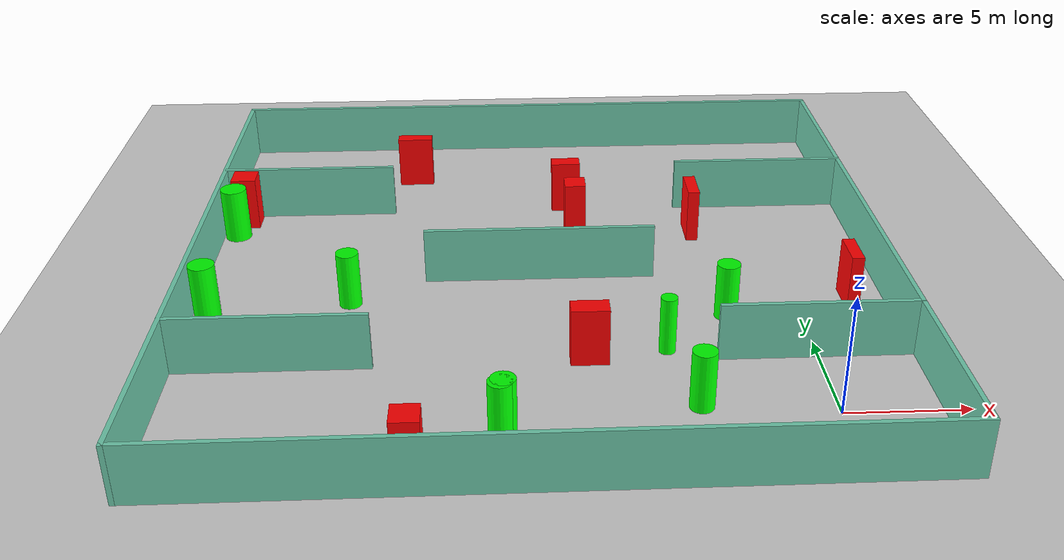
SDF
<sdf version="1.7">
 <world name="default">
  <light name="sun" type="directional">
   <pose>0 0 10 0 -0 0</pose>
   <diffuse>0.8 0.8 0.8 1</diffuse>
   <specular>0.2 0.2 0.2 1</specular>
   <attenuation>
    <range>1000</range>
    <constant>0.9</constant>
    <linear>0.01</linear>
    <quadratic>0.001</quadratic>
   </attenuation>
   <direction>-0.5 0.1 -0.9</direction>
   <spot><inner_angle>0</inner_angle><outer_angle>0</outer_angle><falloff>0</falloff></spot>
  </light>
  <model name="ground_plane">
   <static>1</static>
   <link name="link">
    <collision name="collision">
     <geometry><plane><normal>0 0 1</normal><size>100 100</size></plane></geometry>
     <surface>
      <contact><collide_bitmask>65535</collide_bitmask></contact>
      <friction><ode><mu>100</mu><mu2>50</mu2></ode></friction>
     </surface>
    </collision>
    <visual name="visual">
     <cast_shadows>0</cast_shadows>
     <geometry><plane><normal>0 0 1</normal><size>100 100</size></plane></geometry>
     <material>
      <script><uri>file://media/materials/scripts/gazebo.material</uri><name>Gazebo/Grey</name></script>
     </material>
    </visual>
   </link>
  </model>
  <gravity>0 0 -9.8</gravity>
  <magnetic_field>6e-06 2.3e-05 -4.2e-05</magnetic_field>
  <atmosphere type="adiabatic"/>
  <physics type="ode">
   <max_step_size>0.001</max_step_size>
   <real_time_factor>1</real_time_factor>
   <real_time_update_rate>1000</real_time_update_rate>
  </physics>
  <scene><ambient>0.4 0.4 0.4 1</ambient><background>0.7 0.7 0.7 1</background><shadows>1</shadows></scene>
  <spherical_coordinates>
   <surface_model>EARTH_WGS84</surface_model>
   <latitude_deg>0</latitude_deg>
   <longitude_deg>0</longitude_deg>
   <elevation>0</elevation>
   <heading_deg>0</heading_deg>
  </spherical_coordinates>
  <model name="my_base_walls">
   <link name="Wall_10">
    <collision name="Wall_10_Collision">
     <geometry><box><size>8.2 0.2 2.5</size></box></geometry>
     <pose>0 0 1.25 0 -0 0</pose>
    </collision>
    <visual name="Wall_10_Visual">
     <pose>0 0 1.25 0 -0 0</pose>
     <geometry><box><size>8.2 0.2 2.5</size></box></geometry>
     <material>
      <script><uri>file://media/materials/scripts/gazebo.material</uri><name>Gazebo/Grey</name></script>
      <ambient>0.435294 0.796078 0.67451 1</ambient>
     </material>
     <meta><layer>0</layer></meta>
    </visual>
    <pose>-11 -7 0 0 -0 0</pose>
   </link>
   <link name="Wall_12">
    <collision name="Wall_12_Collision">
     <geometry><box><size>8.2 0.2 2.5</size></box></geometry>
     <pose>0 0 1.25 0 -0 0</pose>
    </collision>
    <visual name="Wall_12_Visual">
     <pose>0 0 1.25 0 -0 0</pose>
     <geometry><box><size>8.2 0.2 2.5</size></box></geometry>
     <material>
      <script><uri>file://media/materials/scripts/gazebo.material</uri><name>Gazebo/Grey</name></script>
      <ambient>0.435294 0.796078 0.67451 1</ambient>
     </material>
     <meta><layer>0</layer></meta>
    </visual>
    <pose>-11 7 0 0 -0 0</pose>
   </link>
   <link name="Wall_14">
    <collision name="Wall_14_Collision">
     <geometry><box><size>8.2 0.2 2.5</size></box></geometry>
     <pose>0 0 1.25 0 -0 0</pose>
    </collision>
    <visual name="Wall_14_Visual">
     <pose>0 0 1.25 0 -0 0</pose>
     <geometry><box><size>8.2 0.2 2.5</size></box></geometry>
     <material>
      <script><uri>file://media/materials/scripts/gazebo.material</uri><name>Gazebo/Grey</name></script>
      <ambient>0.435294 0.796078 0.67451 1</ambient>
     </material>
     <meta><layer>0</layer></meta>
    </visual>
    <pose>11 7 0 0 -0 3.14159</pose>
   </link>
   <link name="Wall_16">
    <collision name="Wall_16_Collision">
     <geometry><box><size>10.2 0.2 2.5</size></box></geometry>
     <pose>0 0 1.25 0 -0 0</pose>
    </collision>
    <visual name="Wall_16_Visual">
     <pose>0 0 1.25 0 -0 0</pose>
     <geometry><box><size>10.2 0.2 2.5</size></box></geometry>
     <material>
      <script><uri>file://media/materials/scripts/gazebo.material</uri><name>Gazebo/Grey</name></script>
      <ambient>0.435294 0.796078 0.67451 1</ambient>
     </material>
     <meta><layer>0</layer></meta>
    </visual>
    <pose>0 0 0 0 -0 3.14159</pose>
   </link>
   <link name="Wall_2">
    <collision name="Wall_2_Collision">
     <geometry><box><size>30.2 0.2 2.5</size></box></geometry>
     <pose>0 0 1.25 0 -0 0</pose>
    </collision>
    <visual name="Wall_2_Visual">
     <pose>0 0 1.25 0 -0 0</pose>
     <geometry><box><size>30.2 0.2 2.5</size></box></geometry>
     <material>
      <script><uri>file://media/materials/scripts/gazebo.material</uri><name>Gazebo/Grey</name></script>
      <ambient>0.435294 0.796078 0.67451 1</ambient>
     </material>
     <meta><layer>0</layer></meta>
    </visual>
    <pose>0 -15 0 0 -0 3.14159</pose>
   </link>
   <link name="Wall_3">
    <collision name="Wall_3_Collision">
     <geometry><box><size>30.2 0.2 2.5</size></box></geometry>
     <pose>0 0 1.25 0 -0 0</pose>
    </collision>
    <visual name="Wall_3_Visual">
     <pose>0 0 1.25 0 -0 0</pose>
     <geometry><box><size>30.2 0.2 2.5</size></box></geometry>
     <material>
      <script><uri>file://media/materials/scripts/gazebo.material</uri><name>Gazebo/Grey</name></script>
      <ambient>0.435294 0.796078 0.67451 1</ambient>
     </material>
     <meta><layer>0</layer></meta>
    </visual>
    <pose>-15 0 0 0 -0 1.5708</pose>
   </link>
   <link name="Wall_4">
    <collision name="Wall_4_Collision">
     <geometry><box><size>30.2 0.2 2.5</size></box></geometry>
     <pose>0 0 1.25 0 -0 0</pose>
    </collision>
    <visual name="Wall_4_Visual">
     <pose>0 0 1.25 0 -0 0</pose>
     <geometry><box><size>30.2 0.2 2.5</size></box></geometry>
     <material>
      <script><uri>file://media/materials/scripts/gazebo.material</uri><name>Gazebo/Grey</name></script>
      <ambient>0.435294 0.796078 0.67451 1</ambient>
     </material>
     <meta><layer>0</layer></meta>
    </visual>
    <pose>0 15 0 0 -0 0</pose>
   </link>
   <link name="Wall_6">
    <collision name="Wall_6_Collision">
     <geometry><box><size>30.2 0.2 2.5</size></box></geometry>
     <pose>0 0 1.25 0 -0 0</pose>
    </collision>
    <visual name="Wall_6_Visual">
     <pose>0 0 1.25 0 -0 0</pose>
     <geometry><box><size>30.2 0.2 2.5</size></box></geometry>
     <material>
      <script><uri>file://media/materials/scripts/gazebo.material</uri><name>Gazebo/Grey</name></script>
      <ambient>0.435294 0.796078 0.67451 1</ambient>
     </material>
     <meta><layer>0</layer></meta>
    </visual>
    <pose>15 0 0 0 -0 1.5708</pose>
   </link>
   <link name="Wall_8">
    <collision name="Wall_8_Collision">
     <geometry><box><size>8.2 0.2 2.5</size></box></geometry>
     <pose>0 0 1.25 0 -0 0</pose>
    </collision>
    <visual name="Wall_8_Visual">
     <pose>0 0 1.25 0 -0 0</pose>
     <geometry><box><size>8.2 0.2 2.5</size></box></geometry>
     <material>
      <script><uri>file://media/materials/scripts/gazebo.material</uri><name>Gazebo/Grey</name></script>
      <ambient>0.435294 0.796078 0.67451 1</ambient>
     </material>
     <meta><layer>0</layer></meta>
    </visual>
    <pose>11 -7 0 0 -0 3.14159</pose>
   </link>
   <static>1</static>
   <pose>-11 11 0 0 -0 0</pose>
  </model>
  <model name="cylinder1">
   <static>1</static>
   <link name="link">
    <inertial>
     <mass>1</mass>
     <inertia><ixx>0.5</ixx><ixy>0</ixy><ixz>0</ixz><iyy>0.5</iyy><iyz>0</iyz><izz>1</izz></inertia>
    </inertial>
    <collision name="collision">
     <geometry><cylinder><radius>0.5961228667441754</radius><length>2.5</length></cylinder></geometry>
    </collision>
    <visual name="visual">
     <geometry><cylinder><radius>0.5961228667441754</radius><length>2.5</length></cylinder></geometry>
     <material>
      <ambient>0 1 0 1</ambient>
      <diffuse>0 1 0 1</diffuse>
      <specular>0.1 0.1 0.1 1</specular>
      <emissive>0 0 0 0</emissive>
     </material>
    </visual>
   </link>
   <pose>-25.244306326317403 15.786570017710474 1.25 0 0 0</pose>
  </model>
  <model name="cylinder2">
   <static>1</static>
   <link name="link">
    <inertial>
     <mass>1</mass>
     <inertia><ixx>0.5</ixx><ixy>0</ixy><ixz>0</ixz><iyy>0.5</iyy><iyz>0</iyz><izz>1</izz></inertia>
    </inertial>
    <collision name="collision">
     <geometry><cylinder><radius>0.48776445503059296</radius><length>2.5</length></cylinder></geometry>
    </collision>
    <visual name="visual">
     <geometry><cylinder><radius>0.48776445503059296</radius><length>2.5</length></cylinder></geometry>
     <material>
      <ambient>0 1 0 1</ambient>
      <diffuse>0 1 0 1</diffuse>
      <specular>0.1 0.1 0.1 1</specular>
      <emissive>0 0 0 0</emissive>
     </material>
    </visual>
   </link>
   <pose>-19.25857804580163 9.081468150596693 1.25 0 0 0</pose>
  </model>
  <model name="cylinder3">
   <static>1</static>
   <link name="link">
    <inertial>
     <mass>1</mass>
     <inertia><ixx>0.5</ixx><ixy>0</ixy><ixz>0</ixz><iyy>0.5</iyy><iyz>0</iyz><izz>1</izz></inertia>
    </inertial>
    <collision name="collision">
     <geometry><cylinder><radius>0.49355977345744895</radius><length>2.5</length></cylinder></geometry>
    </collision>
    <visual name="visual">
     <geometry><cylinder><radius>0.49355977345744895</radius><length>2.5</length></cylinder></geometry>
     <material>
      <ambient>0 1 0 1</ambient>
      <diffuse>0 1 0 1</diffuse>
      <specular>0.1 0.1 0.1 1</specular>
      <emissive>0 0 0 0</emissive>
     </material>
    </visual>
   </link>
   <pose>-5.215184696055065 0.6901647973647727 1.25 0 0 0</pose>
  </model>
  <model name="cylinder4">
   <static>1</static>
   <link name="link">
    <inertial>
     <mass>1</mass>
     <inertia><ixx>0.5</ixx><ixy>0</ixy><ixz>0</ixz><iyy>0.5</iyy><iyz>0</iyz><izz>1</izz></inertia>
    </inertial>
    <collision name="collision">
     <geometry><cylinder><radius>0.3442106225393661</radius><length>2.5</length></cylinder></geometry>
    </collision>
    <visual name="visual">
     <geometry><cylinder><radius>0.3442106225393661</radius><length>2.5</length></cylinder></geometry>
     <material>
      <ambient>0 1 0 1</ambient>
      <diffuse>0 1 0 1</diffuse>
      <specular>0.1 0.1 0.1 1</specular>
      <emissive>0 0 0 0</emissive>
     </material>
    </visual>
   </link>
   <pose>-6.04300785839505 4.671607140268324 1.25 0 0 0</pose>
  </model>
  <model name="cylinder5">
   <static>1</static>
   <link name="link">
    <inertial>
     <mass>1</mass>
     <inertia><ixx>0.5</ixx><ixy>0</ixy><ixz>0</ixz><iyy>0.5</iyy><iyz>0</iyz><izz>1</izz></inertia>
    </inertial>
    <collision name="collision">
     <geometry><cylinder><radius>0.5603563899470296</radius><length>2.5</length></cylinder></geometry>
    </collision>
    <visual name="visual">
     <geometry><cylinder><radius>0.5603563899470296</radius><length>2.5</length></cylinder></geometry>
     <material>
      <ambient>0 1 0 1</ambient>
      <diffuse>0 1 0 1</diffuse>
      <specular>0.1 0.1 0.1 1</specular>
      <emissive>0 0 0 0</emissive>
     </material>
    </visual>
   </link>
   <pose>-25.24177757933751 8.338203607998057 1.25 0 0 0</pose>
  </model>
  <model name="cylinder6">
   <static>1</static>
   <link name="link">
    <inertial>
     <mass>1</mass>
     <inertia><ixx>0.5</ixx><ixy>0</ixy><ixz>0</ixz><iyy>0.5</iyy><iyz>0</iyz><izz>1</izz></inertia>
    </inertial>
    <collision name="collision">
     <geometry><cylinder><radius>0.491973908251253</radius><length>2.5</length></cylinder></geometry>
    </collision>
    <visual name="visual">
     <geometry><cylinder><radius>0.491973908251253</radius><length>2.5</length></cylinder></geometry>
     <material>
      <ambient>0 1 0 1</ambient>
      <diffuse>0 1 0 1</diffuse>
      <specular>0.1 0.1 0.1 1</specular>
      <emissive>0 0 0 0</emissive>
     </material>
    </visual>
   </link>
   <pose>-12.717676811877793 -0.7665395620152484 1.25 0 0 0</pose>
  </model>
  <model name="cylinder7">
   <static>1</static>
   <link name="link">
    <inertial>
     <mass>1</mass>
     <inertia><ixx>0.5</ixx><ixy>0</ixy><ixz>0</ixz><iyy>0.5</iyy><iyz>0</iyz><izz>1</izz></inertia>
    </inertial>
    <collision name="collision">
     <geometry><cylinder><radius>0.49532823616331245</radius><length>2.5</length></cylinder></geometry>
    </collision>
    <visual name="visual">
     <geometry><cylinder><radius>0.49532823616331245</radius><length>2.5</length></cylinder></geometry>
     <material>
      <ambient>0 1 0 1</ambient>
      <diffuse>0 1 0 1</diffuse>
      <specular>0.1 0.1 0.1 1</specular>
      <emissive>0 0 0 0</emissive>
     </material>
    </visual>
   </link>
   <pose>-3.1991982002223054 7.332777178064301 1.25 0 0 0</pose>
  </model>
  <model name="cylinder8">
   <static>1</static>
   <link name="link">
    <inertial>
     <mass>1</mass>
     <inertia><ixx>0.5</ixx><ixy>0</ixy><ixz>0</ixz><iyy>0.5</iyy><iyz>0</iyz><izz>1</izz></inertia>
    </inertial>
    <collision name="collision">
     <geometry><cylinder><radius>0.47995769626829154</radius><length>2.5</length></cylinder></geometry>
    </collision>
    <visual name="visual">
     <geometry><cylinder><radius>0.47995769626829154</radius><length>2.5</length></cylinder></geometry>
     <material>
      <ambient>0 1 0 1</ambient>
      <diffuse>0 1 0 1</diffuse>
      <specular>0.1 0.1 0.1 1</specular>
      <emissive>0 0 0 0</emissive>
     </material>
    </visual>
   </link>
   <pose>-12.828180652336723 -0.9433785703686102 1.25 0 0 0</pose>
  </model>
  <model name="box1">
   <static>1</static>
   <link name="link">
    <inertial>
     <mass>1</mass>
     <inertia><ixx>0.083</ixx><ixy>0</ixy><ixz>0</ixz><iyy>0.083</iyy><iyz>0</iyz><izz>0.083</izz></inertia>
    </inertial>
    <collision name="collision">
     <geometry><box><size>1.5644727415025588 0.8838884860994778 2.5</size></box></geometry>
    </collision>
    <visual name="visual">
     <geometry><box><size>1.5644727415025588 0.8838884860994778 2.5</size></box></geometry>
     <material>
      <ambient>1 0 0 1</ambient>
      <diffuse>1 0 0 1</diffuse>
      <specular>0.1 0.1 0.1 1</specular>
      <emissive>0 0 0 0</emissive>
     </material>
    </visual>
    <sensor name="my_contact" type="contact">
     <contact><collision>box_collision</collision><topic>__default_topic__</topic></contact>
    </sensor>
   </link>
   <pose>-9.245087866173296 4.160097903683424 1.25 0 0 0</pose>
  </model>
  <model name="box2">
   <static>1</static>
   <link name="link">
    <inertial>
     <mass>1</mass>
     <inertia><ixx>0.083</ixx><ixy>0</ixy><ixz>0</ixz><iyy>0.083</iyy><iyz>0</iyz><izz>0.083</izz></inertia>
    </inertial>
    <collision name="collision">
     <geometry><box><size>1.1427608658657544 1.139939320159091 2.5</size></box></geometry>
    </collision>
    <visual name="visual">
     <geometry><box><size>1.1427608658657544 1.139939320159091 2.5</size></box></geometry>
     <material>
      <ambient>1 0 0 1</ambient>
      <diffuse>1 0 0 1</diffuse>
      <specular>0.1 0.1 0.1 1</specular>
      <emissive>0 0 0 0</emissive>
     </material>
    </visual>
    <sensor name="my_contact" type="contact">
     <contact><collision>box_collision</collision><topic>__default_topic__</topic></contact>
    </sensor>
   </link>
   <pose>-24.95099195173188 17.203905592281203 1.25 0 0 0</pose>
  </model>
  <model name="box3">
   <static>1</static>
   <link name="link">
    <inertial>
     <mass>1</mass>
     <inertia><ixx>0.083</ixx><ixy>0</ixy><ixz>0</ixz><iyy>0.083</iyy><iyz>0</iyz><izz>0.083</izz></inertia>
    </inertial>
    <collision name="collision">
     <geometry><box><size>1.6917437225292142 0.6293487997764908 2.5</size></box></geometry>
    </collision>
    <visual name="visual">
     <geometry><box><size>1.6917437225292142 0.6293487997764908 2.5</size></box></geometry>
     <material>
      <ambient>1 0 0 1</ambient>
      <diffuse>1 0 0 1</diffuse>
      <specular>0.1 0.1 0.1 1</specular>
      <emissive>0 0 0 0</emissive>
     </material>
    </visual>
    <sensor name="my_contact" type="contact">
     <contact><collision>box_collision</collision><topic>__default_topic__</topic></contact>
    </sensor>
   </link>
   <pose>-17.01295327191727 21.604822790786596 1.25 0 0 0</pose>
  </model>
  <model name="box4">
   <static>1</static>
   <link name="link">
    <inertial>
     <mass>1</mass>
     <inertia><ixx>0.083</ixx><ixy>0</ixy><ixz>0</ixz><iyy>0.083</iyy><iyz>0</iyz><izz>0.083</izz></inertia>
    </inertial>
    <collision name="collision">
     <geometry><box><size>1.3659322086976111 0.7648031513401969 2.5</size></box></geometry>
    </collision>
    <visual name="visual">
     <geometry><box><size>1.3659322086976111 0.7648031513401969 2.5</size></box></geometry>
     <material>
      <ambient>1 0 0 1</ambient>
      <diffuse>1 0 0 1</diffuse>
      <specular>0.1 0.1 0.1 1</specular>
      <emissive>0 0 0 0</emissive>
     </material>
    </visual>
    <sensor name="my_contact" type="contact">
     <contact><collision>box_collision</collision><topic>__default_topic__</topic></contact>
    </sensor>
   </link>
   <pose>-9.470724950842872 18.228207870723402 1.25 0 0 0</pose>
  </model>
  <model name="box5">
   <static>1</static>
   <link name="link">
    <inertial>
     <mass>1</mass>
     <inertia><ixx>0.083</ixx><ixy>0</ixy><ixz>0</ixz><iyy>0.083</iyy><iyz>0</iyz><izz>0.083</izz></inertia>
    </inertial>
    <collision name="collision">
     <geometry><box><size>1.0933219016228293 1.1285536636009728 2.5</size></box></geometry>
    </collision>
    <visual name="visual">
     <geometry><box><size>1.0933219016228293 1.1285536636009728 2.5</size></box></geometry>
     <material>
      <ambient>1 0 0 1</ambient>
      <diffuse>1 0 0 1</diffuse>
      <specular>0.1 0.1 0.1 1</specular>
      <emissive>0 0 0 0</emissive>
     </material>
    </visual>
    <sensor name="my_contact" type="contact">
     <contact><collision>box_collision</collision><topic>__default_topic__</topic></contact>
    </sensor>
   </link>
   <pose>-16.109029595318074 -2.723211260076419 1.25 0 0 0</pose>
  </model>
  <model name="box6">
   <static>1</static>
   <link name="link">
    <inertial>
     <mass>1</mass>
     <inertia><ixx>0.083</ixx><ixy>0</ixy><ixz>0</ixz><iyy>0.083</iyy><iyz>0</iyz><izz>0.083</izz></inertia>
    </inertial>
    <collision name="collision">
     <geometry><box><size>0.5383411191641094 1.8059116784324285 2.5</size></box></geometry>
    </collision>
    <visual name="visual">
     <geometry><box><size>0.5383411191641094 1.8059116784324285 2.5</size></box></geometry>
     <material>
      <ambient>1 0 0 1</ambient>
      <diffuse>1 0 0 1</diffuse>
      <specular>0.1 0.1 0.1 1</specular>
      <emissive>0 0 0 0</emissive>
     </material>
    </visual>
    <sensor name="my_contact" type="contact">
     <contact><collision>box_collision</collision><topic>__default_topic__</topic></contact>
    </sensor>
   </link>
   <pose>2.3427254282208985 8.42916085083304 1.25 0 0 0</pose>
  </model>
  <model name="box7">
   <static>1</static>
   <link name="link">
    <inertial>
     <mass>1</mass>
     <inertia><ixx>0.083</ixx><ixy>0</ixy><ixz>0</ixz><iyy>0.083</iyy><iyz>0</iyz><izz>0.083</izz></inertia>
    </inertial>
    <collision name="collision">
     <geometry><box><size>0.5396221964209225 1.8439487288104108 2.5</size></box></geometry>
    </collision>
    <visual name="visual">
     <geometry><box><size>0.5396221964209225 1.8439487288104108 2.5</size></box></geometry>
     <material>
      <ambient>1 0 0 1</ambient>
      <diffuse>1 0 0 1</diffuse>
      <specular>0.1 0.1 0.1 1</specular>
      <emissive>0 0 0 0</emissive>
     </material>
    </visual>
    <sensor name="my_contact" type="contact">
     <contact><collision>box_collision</collision><topic>__default_topic__</topic></contact>
    </sensor>
   </link>
   <pose>-3.6505120639402655 15.243231395072023 1.25 0 0 0</pose>
  </model>
  <model name="box8">
   <static>1</static>
   <link name="link">
    <inertial>
     <mass>1</mass>
     <inertia><ixx>0.083</ixx><ixy>0</ixy><ixz>0</ixz><iyy>0.083</iyy><iyz>0</iyz><izz>0.083</izz></inertia>
    </inertial>
    <collision name="collision">
     <geometry><box><size>0.9869775879490803 1.037503624310204 2.5</size></box></geometry>
    </collision>
    <visual name="visual">
     <geometry><box><size>0.9869775879490803 1.037503624310204 2.5</size></box></geometry>
     <material>
      <ambient>1 0 0 1</ambient>
      <diffuse>1 0 0 1</diffuse>
      <specular>0.1 0.1 0.1 1</specular>
      <emissive>0 0 0 0</emissive>
     </material>
    </visual>
    <sensor name="my_contact" type="contact">
     <contact><collision>box_collision</collision><topic>__default_topic__</topic></contact>
    </sensor>
   </link>
   <pose>-9.154946934878797 15.793801467439273 1.25 0 0 0</pose>
  </model>
 </world>
</sdf>
